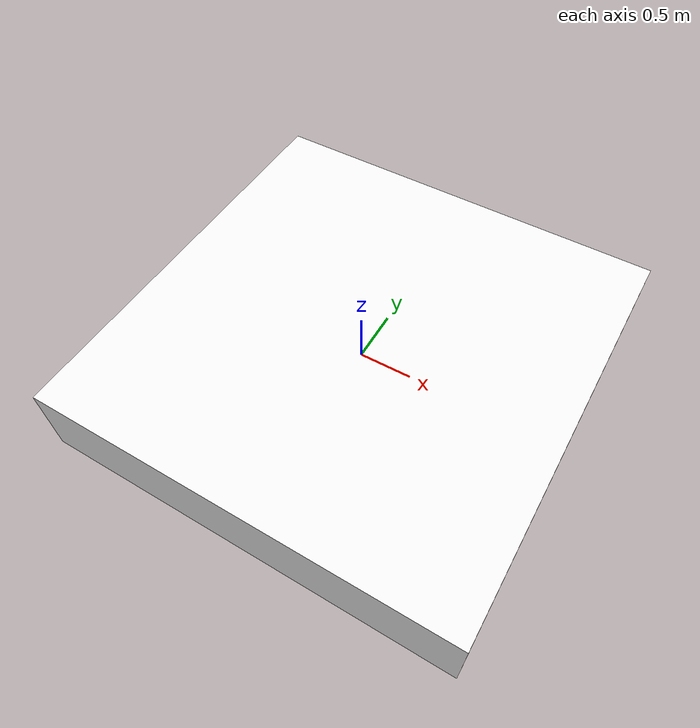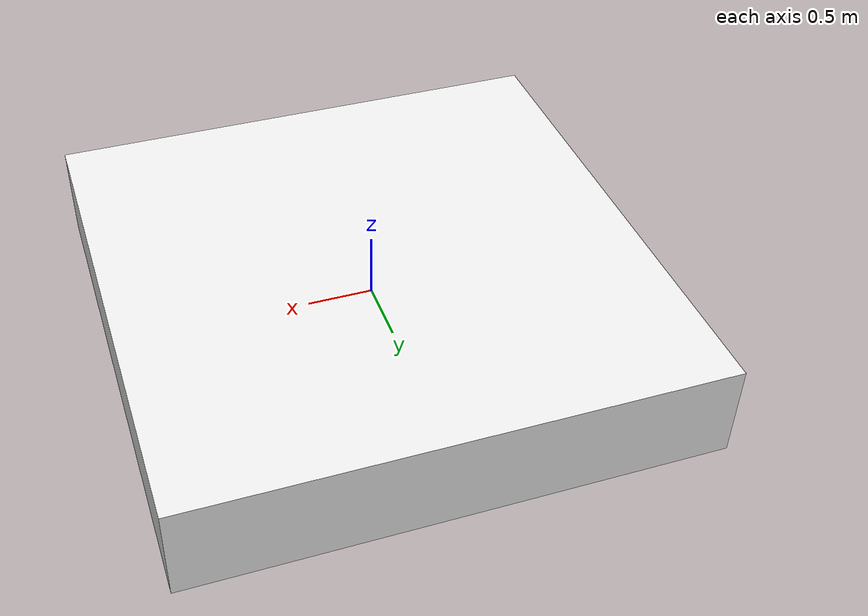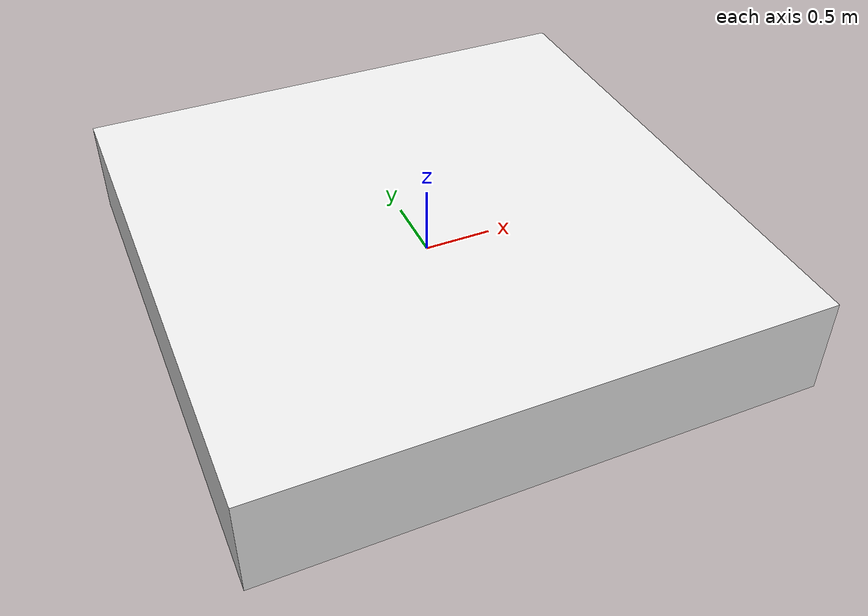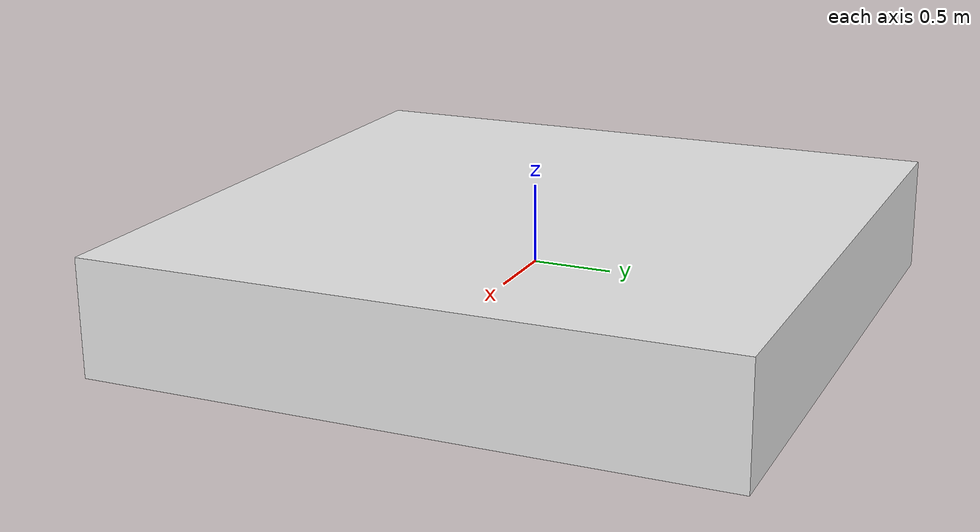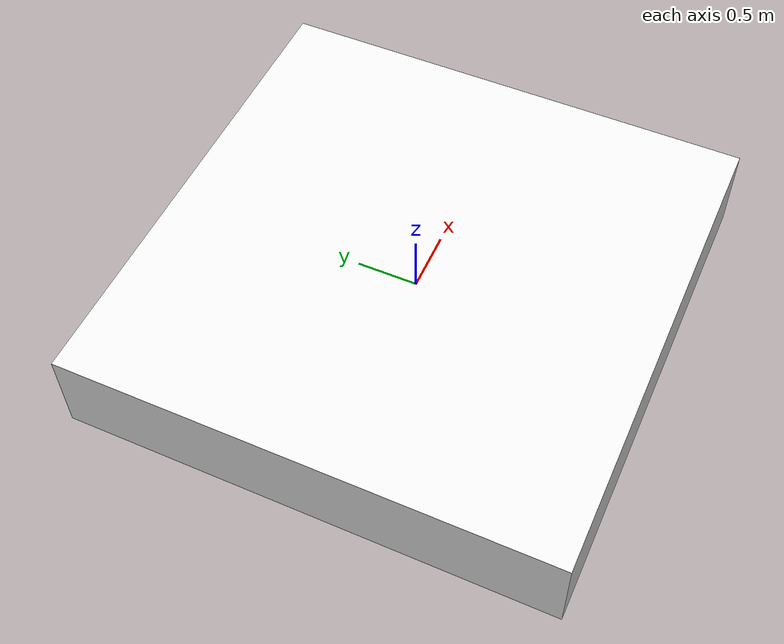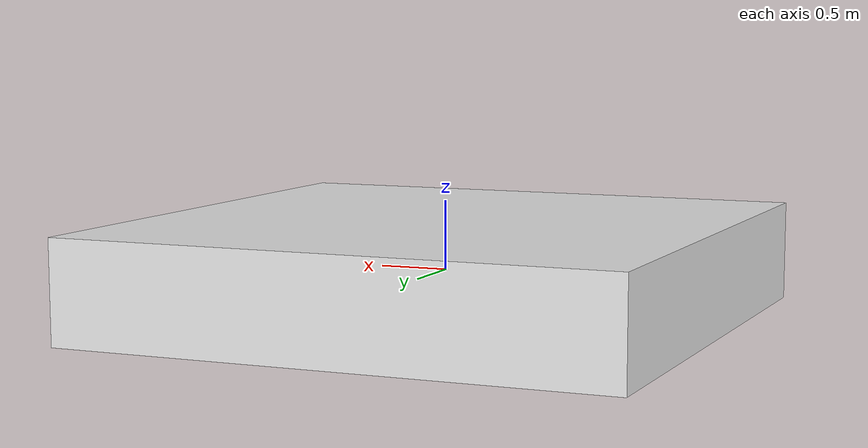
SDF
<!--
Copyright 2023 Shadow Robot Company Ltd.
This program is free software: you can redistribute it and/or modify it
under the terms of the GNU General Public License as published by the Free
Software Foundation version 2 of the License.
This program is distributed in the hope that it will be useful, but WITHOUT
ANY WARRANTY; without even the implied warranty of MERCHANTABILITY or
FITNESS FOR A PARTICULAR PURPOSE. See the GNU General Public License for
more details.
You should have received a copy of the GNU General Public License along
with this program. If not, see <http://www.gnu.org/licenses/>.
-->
<?xml version='1.0'?>

<sdf version="1.4">
  <model name="xprize_table">
    <static>true</static>
    <link name="link">
      <collision name="collision_xprize_table">
        <geometry>
          <box>
            <size>4 4 0.74</size>
          </box>
        </geometry>
      </collision>
      <visual name="visual_xprize_table">
        <geometry>
          <box>
            <size>4 4 0.74</size>
          </box>
        </geometry>
        <material>
          <script>
            <uri>file://media/materials/scripts/gazebo.material</uri>
            <name>Gazebo/White</name>
          </script>
        </material>
      </visual>
    </link>
  </model>
</sdf>
